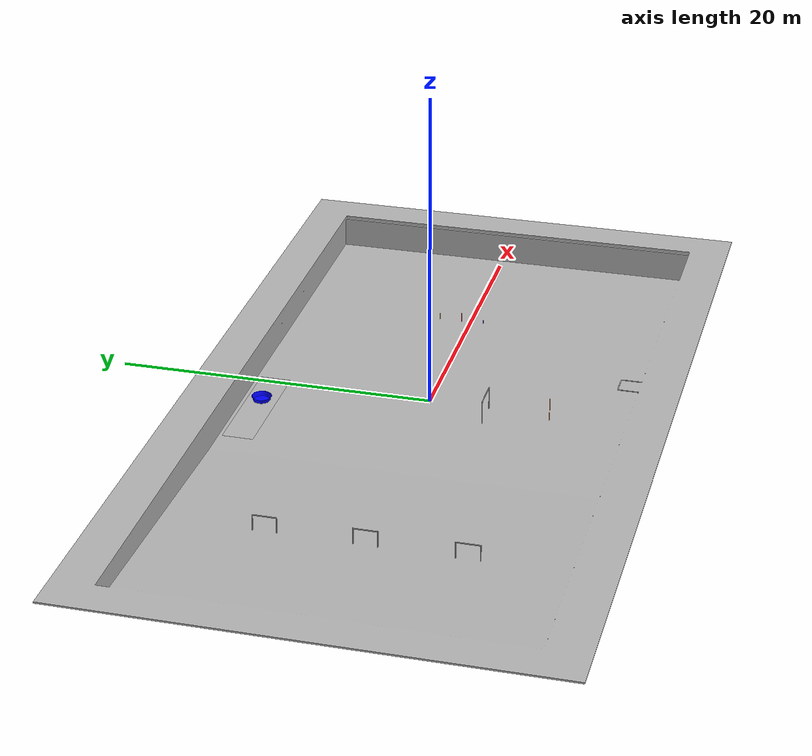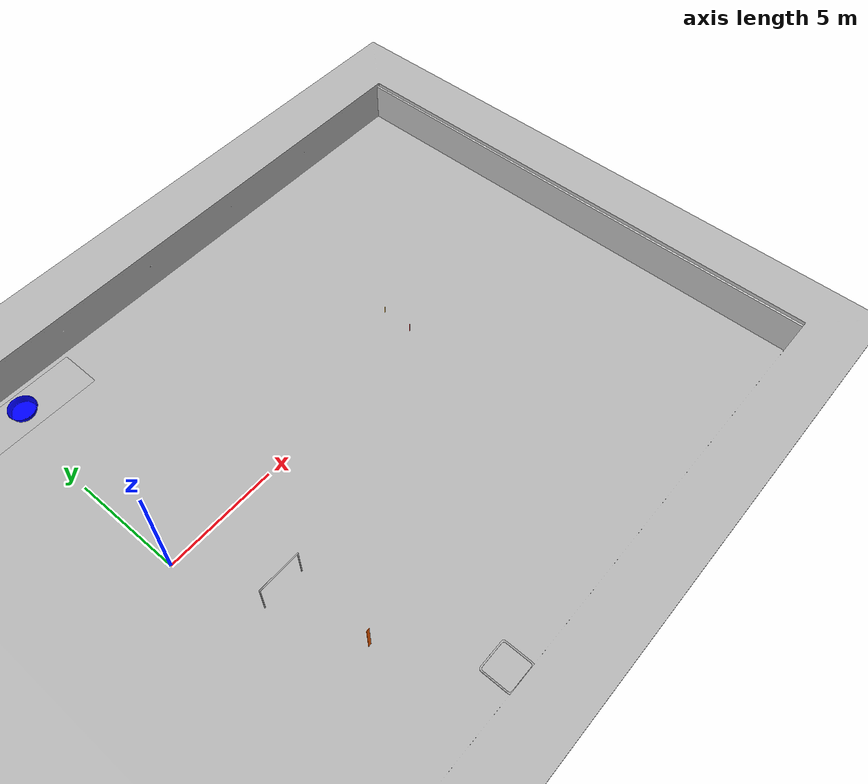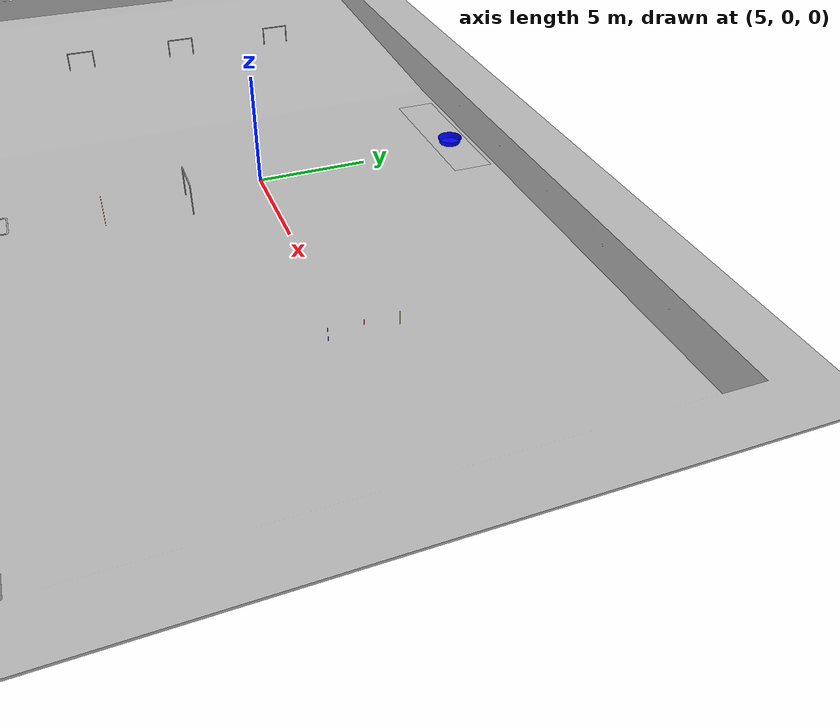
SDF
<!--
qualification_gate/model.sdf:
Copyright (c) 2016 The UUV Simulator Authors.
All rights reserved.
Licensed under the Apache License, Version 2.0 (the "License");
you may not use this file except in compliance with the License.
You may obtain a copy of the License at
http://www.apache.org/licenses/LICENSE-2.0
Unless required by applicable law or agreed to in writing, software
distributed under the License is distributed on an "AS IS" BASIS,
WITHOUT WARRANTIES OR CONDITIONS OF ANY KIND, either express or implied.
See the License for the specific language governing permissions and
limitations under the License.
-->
<sdf version="1.6">
 <world name="competition">
  <plugin filename="gz-sim-physics-system" name="gz::sim::systems::Physics"/>
  <plugin filename="gz-sim-sensors-system" name="gz::sim::systems::Sensors">
   <render_engine>ogre2</render_engine>
  </plugin>
  <plugin filename="gz-sim-user-commands-system" name="gz::sim::systems::UserCommands"/>
  <plugin filename="gz-sim-scene-broadcaster-system" name="gz::sim::systems::SceneBroadcaster"/>
  <plugin filename="libgz-sim-imu-system.so" name="gz::sim::systems::Imu"/>
  <plugin filename="gz-sim-buoyancy-system" name="gz::sim::systems::Buoyancy">
   <graded_buoyancy>
    <default_density>1000</default_density>
    <density_change><above_depth>0</above_depth><density>1</density></density_change>
   </graded_buoyancy>
   <enable>auv</enable>
  </plugin>
  <include><uri>https://fuel.gazebosim.org/1.0/OpenRobotics/models/Sun</uri></include>
  <include><uri>model://pool</uri></include>
  <include><uri>model://starting_zone</uri><pose>5 -11.7 0 0 0 0</pose></include>
  <include><uri>model://gate</uri><pose>2.5 -3 -0.45 0 0 0</pose></include>
  <include><uri>model://orange_flare</uri><pose>3 -7 -2.25 0 0 0</pose></include>
  <include><uri>model://blue_flare</uri><pose>15 0 -2.75 0 0 0</pose></include>
  <include><uri>model://red_flare</uri><pose>15 1.5 -2.75 0 0 0</pose></include>
  <include><uri>model://yellow_flare</uri><pose>15 3 -2.75 0 0 0</pose></include>
  <include><uri>model://mat</uri><pose>0 11.25 -1.99 0 0 0</pose></include>
  <include><uri>model://blue_bucket</uri><pose>1 11.25 -1.99 0 0 0</pose></include>
  <model name="quali_1">
   <pose>-16 6 -0.4 0 0 0</pose>
   <include><uri>model://qualification_gate</uri></include>
  </model>
  <model name="quali_2">
   <pose>-16 0 -0.4 0 0 0</pose>
   <include><uri>model://qualification_gate</uri></include>
  </model>
  <model name="quali_3">
   <pose>-16 -6 -0.4 0 0 0</pose>
   <include><uri>model://qualification_gate</uri></include>
  </model>
 </world>
</sdf>

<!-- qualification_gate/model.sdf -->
<sdf version="1.5">
  <model name="qualification_gate">
    <static>true</static>
    <link name="link">
      <collision name="gate_geom">
        <pose>0 0 0 0 0 1.57</pose>
        <geometry>
          <mesh>
            <uri>model://qualification_gate/meshes/qualification_gate.dae</uri>
          </mesh>
        </geometry>
      </collision>
      <visual name="gate">
        <cast_shadows>true</cast_shadows>
        <pose>0 0 0 0 0 1.57</pose>
        <geometry>
          <mesh>
            <uri>model://qualification_gate/meshes/qualification_gate.dae</uri>
          </mesh>
        </geometry>
      </visual>
    </link>
  </model>
</sdf>

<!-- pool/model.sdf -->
<sdf version="1.5">
  <model name="pool">
    <static>true</static>
    <link name="link">
      <collision name="pool_geom">
        <pose>0 0 0 0 0 0</pose>
        <geometry>
          <mesh>
            <uri>model://pool/meshes/pool.dae</uri>
          </mesh>
        </geometry>
      </collision>
      <visual name="pool">
        <cast_shadows>true</cast_shadows>
        <pose>0 0 0 0 0 0</pose>
        <geometry>
          <mesh>
            <uri>model://pool/meshes/pool.dae</uri>
          </mesh>
        </geometry>
      </visual>
    </link>
  </model>
</sdf>

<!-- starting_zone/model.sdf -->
<sdf version="1.5">
  <model name="starting_zone">
    <static>true</static>
    <link name="link">
      <collision name="starting_square_geom">
        <pose>0 0 0 0 0 0</pose>
        <geometry>
          <mesh>
            <uri>model://starting_zone/meshes/startingsquare.dae</uri>
          </mesh>
        </geometry>
      </collision>
      <visual name="starting_square">
        <cast_shadows>true</cast_shadows>
        <pose>0 0 0 0 0 0</pose>
        <geometry>
          <mesh>
            <uri>model://starting_zone/meshes/startingsquare.dae</uri>
          </mesh>
        </geometry>
      </visual>
    </link>
  </model>
</sdf>

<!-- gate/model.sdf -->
<sdf version="1.5">
  <model name="gate">
    <static>true</static>
    <link name="link">
      <collision name="gate_geom">
        <pose>0 0 0 0 0 0</pose>
        <geometry>
          <mesh>
            <uri>model://gate/meshes/gate.dae</uri>
          </mesh>
        </geometry>
      </collision>
      <visual name="gate">
        <cast_shadows>true</cast_shadows>
        <pose>0 0 0 0 0 0</pose>
        <geometry>
          <mesh>
            <uri>model://gate/meshes/gate.dae</uri>
          </mesh>
        </geometry>
      </visual>
    </link>
  </model>
</sdf>

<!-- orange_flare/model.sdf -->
<sdf version="1.5">
  <model name="orange_flare">
    <static>true</static>
    <link name="link">
      <collision name="flare_geom">
        <pose>0 0 0 0 0 0</pose>
        <geometry>
          <box>
            <size>0.15 0.01 1.5</size>
          </box>
        </geometry>
      </collision>
      <visual name="flare_visual">
        <pose degrees="true">0 0 1 0 0 0</pose>
        <geometry>
          <box>
            <size>0.15 0.01 1.5</size>
          </box>
        </geometry>
        <material>
          <ambient>1 0.374 0 1</ambient>
          <diffuse>1 0.374 0 1</diffuse>
          <specular>1 0.374 0 1</specular>
        </material>
      </visual>
    </link>
  </model>
</sdf>

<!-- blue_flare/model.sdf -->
<sdf version="1.5">
  <model name="blue_flare">
    <static>true</static>
    <link name="link">
      <collision name="flare_geom">
        <pose>0 0 0 0 0 0</pose>
        <geometry>
          <cylinder>
            <radius>0.008</radius>
            <length>0.8</length>
          </cylinder>
        </geometry>
      </collision>
      <visual name="flare_visual">
        <pose degrees="true">0 0 1 0 0 0</pose>
        <geometry>
          <cylinder>
            <radius>0.008</radius>
            <length>0.8</length>
          </cylinder>
        </geometry>
        <material>
          <ambient>0 0 1 1</ambient>
          <diffuse>0 0 1 1</diffuse>
          <specular>0 0 1 1</specular>
        </material>
      </visual>
    </link>
  </model>
</sdf>

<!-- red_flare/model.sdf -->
<sdf version="1.5">
  <model name="red_flare">
    <static>true</static>
    <link name="link">
      <collision name="flare_geom">
        <pose>0 0 0 0 0 0</pose>
        <geometry>
          <cylinder>
            <radius>0.008</radius>
            <length>0.8</length>
          </cylinder>
        </geometry>
      </collision>
      <visual name="flare_visual">
        <pose degrees="true">0 0 1 0 0 0</pose>
        <geometry>
          <cylinder>
            <radius>0.008</radius>
            <length>0.8</length>
          </cylinder>
        </geometry>
        <material>
          <ambient>1 0 0 1</ambient>
          <diffuse>1 0 0 1</diffuse>
          <specular>1 0 0 1</specular>
        </material>
      </visual>
    </link>
  </model>
</sdf>

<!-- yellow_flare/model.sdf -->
<sdf version="1.5">
  <model name="yellow_flare">
    <static>true</static>
    <link name="link">
      <collision name="flare_geom">
        <pose>0 0 0 0 0 0</pose>
        <geometry>
          <cylinder>
            <radius>0.008</radius>
            <length>0.8</length>
          </cylinder>
        </geometry>
      </collision>
      <visual name="flare_visual">
        <pose degrees="true">0 0 1 0 0 0</pose>
        <geometry>
          <cylinder>
            <radius>0.008</radius>
            <length>0.8</length>
          </cylinder>
        </geometry>
        <material>
          <ambient>1 0.675 0 1</ambient>
          <diffuse>1 0.675 0 1</diffuse>
          <specular>1 0.675 0 1</specular>
        </material>
      </visual>
    </link>
  </model>
</sdf>

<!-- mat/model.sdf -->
<sdf version="1.5">
  <model name="mat">
    <static>true</static>
    <link name="link">
      <collision name="mat_geom">
        <pose>0 0 0 0 0 1.57</pose>
        <geometry>
          <mesh>
            <uri>model://mat/meshes/green_mat.dae</uri>
          </mesh>
        </geometry>
      </collision>
      <visual name="mat">
        <cast_shadows>true</cast_shadows>
        <pose>0 0 0 0 0 1.57</pose>
        <geometry>
          <mesh>
            <uri>model://mat/meshes/green_mat.dae</uri>
          </mesh>
        </geometry>
      </visual>
    </link>
  </model>
</sdf>

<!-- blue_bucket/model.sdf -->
<sdf version="1.5">
  <model name="blue_bucket">
    <static>true</static>
    <link name="link">
      <collision name="gate_geom">
        <pose>0 0 0 0 0 0</pose>
        <geometry>
          <mesh>
            <uri>model://blue_bucket/meshes/blue_bucket.dae</uri>
          </mesh>
        </geometry>
      </collision>
      <visual name="gate">
        <cast_shadows>true</cast_shadows>
        <pose>0 0 0 0 0 0</pose>
        <geometry>
          <mesh>
            <uri>model://blue_bucket/meshes/blue_bucket.dae</uri>
          </mesh>
        </geometry>
        <material>
          <ambient>0 0 1 1</ambient>
          <diffuse>0 0 1 1</diffuse>
          <specular>0 0 1 1</specular>
        </material>
      </visual>
    </link>
  </model>
</sdf>
